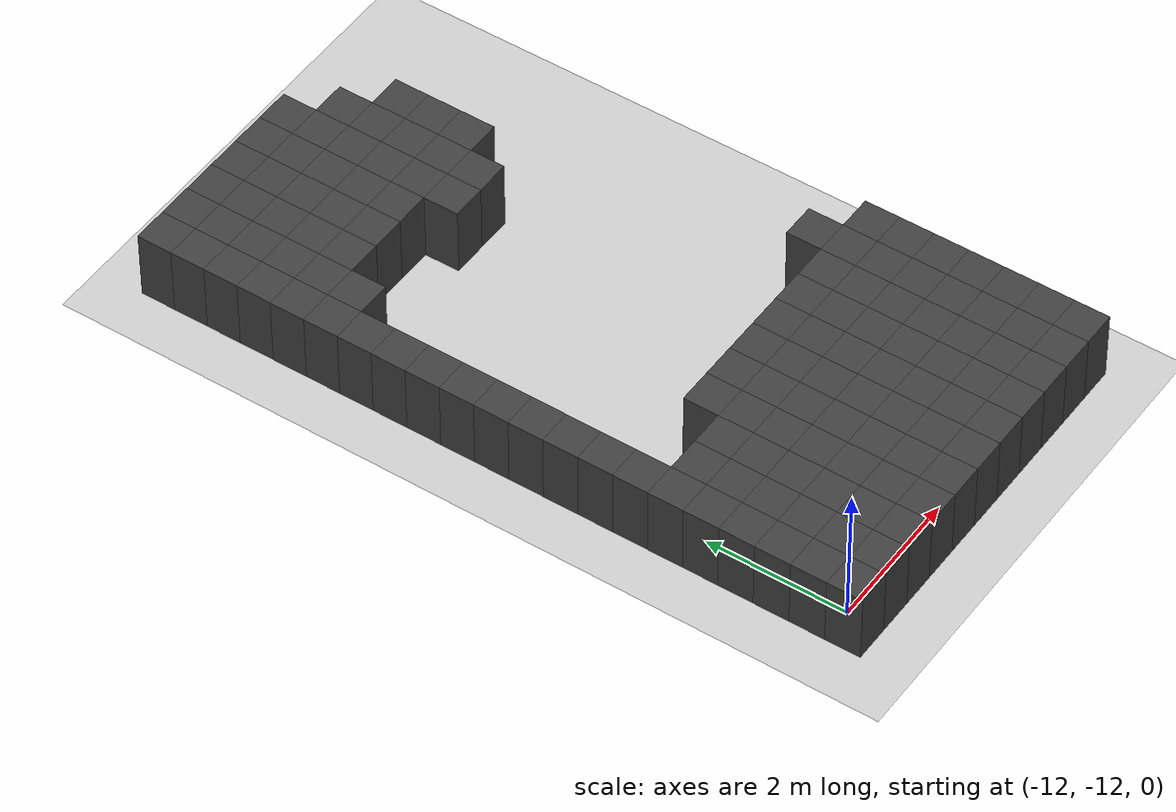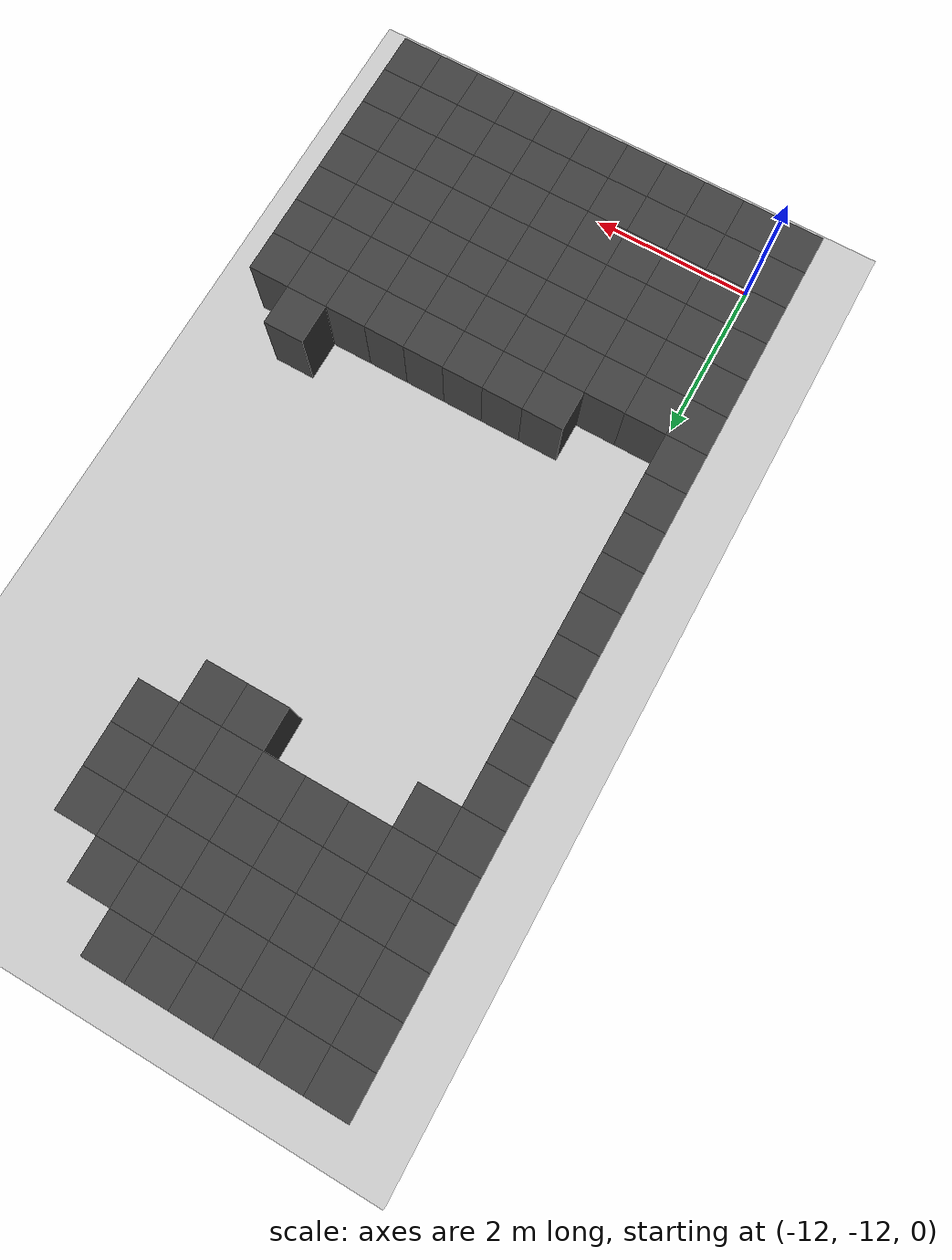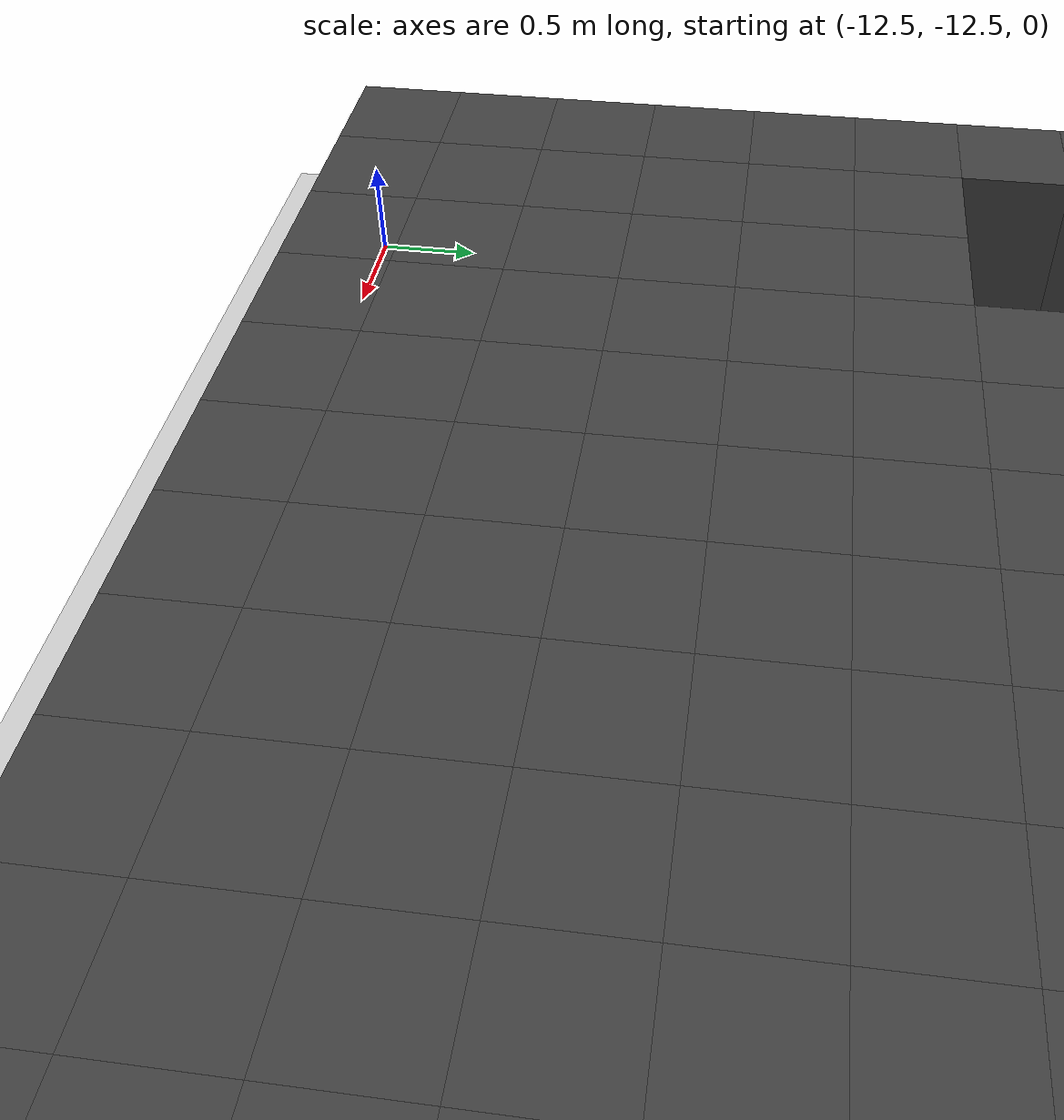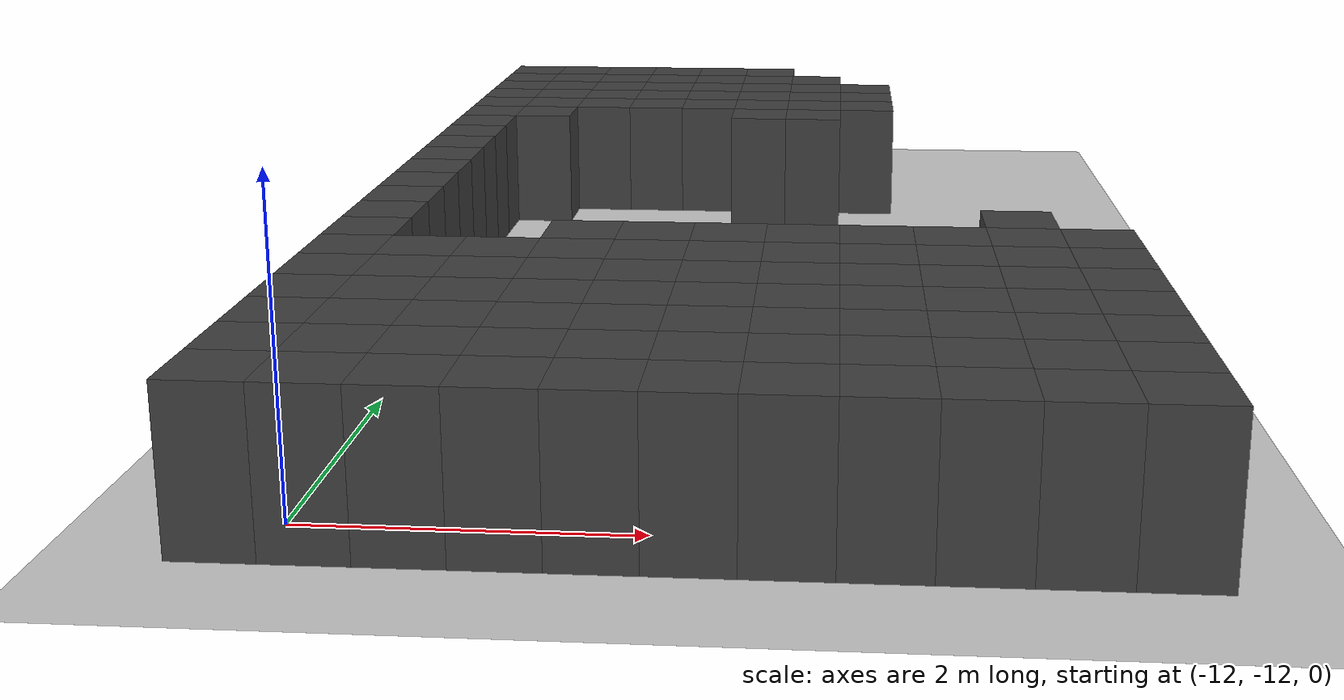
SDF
<sdf version="1.7">
 <world name="map_8658">
  <model name="ground_plane">
   <static>true</static>
   <link name="link">
    <collision name="collision">
     <geometry><plane><normal>0 0 1</normal><size>200 200</size></plane></geometry>
    </collision>
    <visual name="visual">
     <geometry><plane><normal>0 0 1</normal><size>200 200</size></plane></geometry>
     <material><ambient>0.8 0.8 0.8 1</ambient><diffuse>0.8 0.8 0.8 1</diffuse></material>
    </visual>
   </link>
  </model>
  <model name="maze_environment">
   <static>true</static>
   <link name="wall_573">
    <pose>-12.250 -2.250 0.500 0 0 0</pose>
    <collision name="col"><geometry><box><size>0.5 0.5 1.0</size></box></geometry></collision>
    <visual name="vis">
     <geometry><box><size>0.5 0.5 1.0</size></box></geometry>
     <material><ambient>0.15 0.15 0.15 1</ambient><diffuse>0.25 0.25 0.25 1</diffuse></material>
    </visual>
   </link>
   <link name="wall_574">
    <pose>-11.750 -2.250 0.500 0 0 0</pose>
    <collision name="col"><geometry><box><size>0.5 0.5 1.0</size></box></geometry></collision>
    <visual name="vis">
     <geometry><box><size>0.5 0.5 1.0</size></box></geometry>
     <material><ambient>0.15 0.15 0.15 1</ambient><diffuse>0.25 0.25 0.25 1</diffuse></material>
    </visual>
   </link>
   <link name="wall_575">
    <pose>-11.250 -2.250 0.500 0 0 0</pose>
    <collision name="col"><geometry><box><size>0.5 0.5 1.0</size></box></geometry></collision>
    <visual name="vis">
     <geometry><box><size>0.5 0.5 1.0</size></box></geometry>
     <material><ambient>0.15 0.15 0.15 1</ambient><diffuse>0.25 0.25 0.25 1</diffuse></material>
    </visual>
   </link>
   <link name="wall_576">
    <pose>-10.750 -2.250 0.500 0 0 0</pose>
    <collision name="col"><geometry><box><size>0.5 0.5 1.0</size></box></geometry></collision>
    <visual name="vis">
     <geometry><box><size>0.5 0.5 1.0</size></box></geometry>
     <material><ambient>0.15 0.15 0.15 1</ambient><diffuse>0.25 0.25 0.25 1</diffuse></material>
    </visual>
   </link>
   <link name="wall_577">
    <pose>-10.250 -2.250 0.500 0 0 0</pose>
    <collision name="col"><geometry><box><size>0.5 0.5 1.0</size></box></geometry></collision>
    <visual name="vis">
     <geometry><box><size>0.5 0.5 1.0</size></box></geometry>
     <material><ambient>0.15 0.15 0.15 1</ambient><diffuse>0.25 0.25 0.25 1</diffuse></material>
    </visual>
   </link>
   <link name="wall_578">
    <pose>-9.750 -2.250 0.500 0 0 0</pose>
    <collision name="col"><geometry><box><size>0.5 0.5 1.0</size></box></geometry></collision>
    <visual name="vis">
     <geometry><box><size>0.5 0.5 1.0</size></box></geometry>
     <material><ambient>0.15 0.15 0.15 1</ambient><diffuse>0.25 0.25 0.25 1</diffuse></material>
    </visual>
   </link>
   <link name="wall_594">
    <pose>-12.250 -2.750 0.500 0 0 0</pose>
    <collision name="col"><geometry><box><size>0.5 0.5 1.0</size></box></geometry></collision>
    <visual name="vis">
     <geometry><box><size>0.5 0.5 1.0</size></box></geometry>
     <material><ambient>0.15 0.15 0.15 1</ambient><diffuse>0.25 0.25 0.25 1</diffuse></material>
    </visual>
   </link>
   <link name="wall_595">
    <pose>-11.750 -2.750 0.500 0 0 0</pose>
    <collision name="col"><geometry><box><size>0.5 0.5 1.0</size></box></geometry></collision>
    <visual name="vis">
     <geometry><box><size>0.5 0.5 1.0</size></box></geometry>
     <material><ambient>0.15 0.15 0.15 1</ambient><diffuse>0.25 0.25 0.25 1</diffuse></material>
    </visual>
   </link>
   <link name="wall_596">
    <pose>-11.250 -2.750 0.500 0 0 0</pose>
    <collision name="col"><geometry><box><size>0.5 0.5 1.0</size></box></geometry></collision>
    <visual name="vis">
     <geometry><box><size>0.5 0.5 1.0</size></box></geometry>
     <material><ambient>0.15 0.15 0.15 1</ambient><diffuse>0.25 0.25 0.25 1</diffuse></material>
    </visual>
   </link>
   <link name="wall_597">
    <pose>-10.750 -2.750 0.500 0 0 0</pose>
    <collision name="col"><geometry><box><size>0.5 0.5 1.0</size></box></geometry></collision>
    <visual name="vis">
     <geometry><box><size>0.5 0.5 1.0</size></box></geometry>
     <material><ambient>0.15 0.15 0.15 1</ambient><diffuse>0.25 0.25 0.25 1</diffuse></material>
    </visual>
   </link>
   <link name="wall_598">
    <pose>-10.250 -2.750 0.500 0 0 0</pose>
    <collision name="col"><geometry><box><size>0.5 0.5 1.0</size></box></geometry></collision>
    <visual name="vis">
     <geometry><box><size>0.5 0.5 1.0</size></box></geometry>
     <material><ambient>0.15 0.15 0.15 1</ambient><diffuse>0.25 0.25 0.25 1</diffuse></material>
    </visual>
   </link>
   <link name="wall_599">
    <pose>-9.750 -2.750 0.500 0 0 0</pose>
    <collision name="col"><geometry><box><size>0.5 0.5 1.0</size></box></geometry></collision>
    <visual name="vis">
     <geometry><box><size>0.5 0.5 1.0</size></box></geometry>
     <material><ambient>0.15 0.15 0.15 1</ambient><diffuse>0.25 0.25 0.25 1</diffuse></material>
    </visual>
   </link>
   <link name="wall_600">
    <pose>-9.250 -2.750 0.500 0 0 0</pose>
    <collision name="col"><geometry><box><size>0.5 0.5 1.0</size></box></geometry></collision>
    <visual name="vis">
     <geometry><box><size>0.5 0.5 1.0</size></box></geometry>
     <material><ambient>0.15 0.15 0.15 1</ambient><diffuse>0.25 0.25 0.25 1</diffuse></material>
    </visual>
   </link>
   <link name="wall_613">
    <pose>-12.250 -3.250 0.500 0 0 0</pose>
    <collision name="col"><geometry><box><size>0.5 0.5 1.0</size></box></geometry></collision>
    <visual name="vis">
     <geometry><box><size>0.5 0.5 1.0</size></box></geometry>
     <material><ambient>0.15 0.15 0.15 1</ambient><diffuse>0.25 0.25 0.25 1</diffuse></material>
    </visual>
   </link>
   <link name="wall_614">
    <pose>-11.750 -3.250 0.500 0 0 0</pose>
    <collision name="col"><geometry><box><size>0.5 0.5 1.0</size></box></geometry></collision>
    <visual name="vis">
     <geometry><box><size>0.5 0.5 1.0</size></box></geometry>
     <material><ambient>0.15 0.15 0.15 1</ambient><diffuse>0.25 0.25 0.25 1</diffuse></material>
    </visual>
   </link>
   <link name="wall_615">
    <pose>-11.250 -3.250 0.500 0 0 0</pose>
    <collision name="col"><geometry><box><size>0.5 0.5 1.0</size></box></geometry></collision>
    <visual name="vis">
     <geometry><box><size>0.5 0.5 1.0</size></box></geometry>
     <material><ambient>0.15 0.15 0.15 1</ambient><diffuse>0.25 0.25 0.25 1</diffuse></material>
    </visual>
   </link>
   <link name="wall_616">
    <pose>-10.750 -3.250 0.500 0 0 0</pose>
    <collision name="col"><geometry><box><size>0.5 0.5 1.0</size></box></geometry></collision>
    <visual name="vis">
     <geometry><box><size>0.5 0.5 1.0</size></box></geometry>
     <material><ambient>0.15 0.15 0.15 1</ambient><diffuse>0.25 0.25 0.25 1</diffuse></material>
    </visual>
   </link>
   <link name="wall_617">
    <pose>-10.250 -3.250 0.500 0 0 0</pose>
    <collision name="col"><geometry><box><size>0.5 0.5 1.0</size></box></geometry></collision>
    <visual name="vis">
     <geometry><box><size>0.5 0.5 1.0</size></box></geometry>
     <material><ambient>0.15 0.15 0.15 1</ambient><diffuse>0.25 0.25 0.25 1</diffuse></material>
    </visual>
   </link>
   <link name="wall_618">
    <pose>-9.750 -3.250 0.500 0 0 0</pose>
    <collision name="col"><geometry><box><size>0.5 0.5 1.0</size></box></geometry></collision>
    <visual name="vis">
     <geometry><box><size>0.5 0.5 1.0</size></box></geometry>
     <material><ambient>0.15 0.15 0.15 1</ambient><diffuse>0.25 0.25 0.25 1</diffuse></material>
    </visual>
   </link>
   <link name="wall_619">
    <pose>-9.250 -3.250 0.500 0 0 0</pose>
    <collision name="col"><geometry><box><size>0.5 0.5 1.0</size></box></geometry></collision>
    <visual name="vis">
     <geometry><box><size>0.5 0.5 1.0</size></box></geometry>
     <material><ambient>0.15 0.15 0.15 1</ambient><diffuse>0.25 0.25 0.25 1</diffuse></material>
    </visual>
   </link>
   <link name="wall_620">
    <pose>-8.750 -3.250 0.500 0 0 0</pose>
    <collision name="col"><geometry><box><size>0.5 0.5 1.0</size></box></geometry></collision>
    <visual name="vis">
     <geometry><box><size>0.5 0.5 1.0</size></box></geometry>
     <material><ambient>0.15 0.15 0.15 1</ambient><diffuse>0.25 0.25 0.25 1</diffuse></material>
    </visual>
   </link>
   <link name="wall_631">
    <pose>-12.250 -3.750 0.500 0 0 0</pose>
    <collision name="col"><geometry><box><size>0.5 0.5 1.0</size></box></geometry></collision>
    <visual name="vis">
     <geometry><box><size>0.5 0.5 1.0</size></box></geometry>
     <material><ambient>0.15 0.15 0.15 1</ambient><diffuse>0.25 0.25 0.25 1</diffuse></material>
    </visual>
   </link>
   <link name="wall_632">
    <pose>-11.750 -3.750 0.500 0 0 0</pose>
    <collision name="col"><geometry><box><size>0.5 0.5 1.0</size></box></geometry></collision>
    <visual name="vis">
     <geometry><box><size>0.5 0.5 1.0</size></box></geometry>
     <material><ambient>0.15 0.15 0.15 1</ambient><diffuse>0.25 0.25 0.25 1</diffuse></material>
    </visual>
   </link>
   <link name="wall_633">
    <pose>-11.250 -3.750 0.500 0 0 0</pose>
    <collision name="col"><geometry><box><size>0.5 0.5 1.0</size></box></geometry></collision>
    <visual name="vis">
     <geometry><box><size>0.5 0.5 1.0</size></box></geometry>
     <material><ambient>0.15 0.15 0.15 1</ambient><diffuse>0.25 0.25 0.25 1</diffuse></material>
    </visual>
   </link>
   <link name="wall_634">
    <pose>-10.750 -3.750 0.500 0 0 0</pose>
    <collision name="col"><geometry><box><size>0.5 0.5 1.0</size></box></geometry></collision>
    <visual name="vis">
     <geometry><box><size>0.5 0.5 1.0</size></box></geometry>
     <material><ambient>0.15 0.15 0.15 1</ambient><diffuse>0.25 0.25 0.25 1</diffuse></material>
    </visual>
   </link>
   <link name="wall_635">
    <pose>-10.250 -3.750 0.500 0 0 0</pose>
    <collision name="col"><geometry><box><size>0.5 0.5 1.0</size></box></geometry></collision>
    <visual name="vis">
     <geometry><box><size>0.5 0.5 1.0</size></box></geometry>
     <material><ambient>0.15 0.15 0.15 1</ambient><diffuse>0.25 0.25 0.25 1</diffuse></material>
    </visual>
   </link>
   <link name="wall_636">
    <pose>-9.750 -3.750 0.500 0 0 0</pose>
    <collision name="col"><geometry><box><size>0.5 0.5 1.0</size></box></geometry></collision>
    <visual name="vis">
     <geometry><box><size>0.5 0.5 1.0</size></box></geometry>
     <material><ambient>0.15 0.15 0.15 1</ambient><diffuse>0.25 0.25 0.25 1</diffuse></material>
    </visual>
   </link>
   <link name="wall_637">
    <pose>-9.250 -3.750 0.500 0 0 0</pose>
    <collision name="col"><geometry><box><size>0.5 0.5 1.0</size></box></geometry></collision>
    <visual name="vis">
     <geometry><box><size>0.5 0.5 1.0</size></box></geometry>
     <material><ambient>0.15 0.15 0.15 1</ambient><diffuse>0.25 0.25 0.25 1</diffuse></material>
    </visual>
   </link>
   <link name="wall_638">
    <pose>-8.750 -3.750 0.500 0 0 0</pose>
    <collision name="col"><geometry><box><size>0.5 0.5 1.0</size></box></geometry></collision>
    <visual name="vis">
     <geometry><box><size>0.5 0.5 1.0</size></box></geometry>
     <material><ambient>0.15 0.15 0.15 1</ambient><diffuse>0.25 0.25 0.25 1</diffuse></material>
    </visual>
   </link>
   <link name="wall_649">
    <pose>-12.250 -4.250 0.500 0 0 0</pose>
    <collision name="col"><geometry><box><size>0.5 0.5 1.0</size></box></geometry></collision>
    <visual name="vis">
     <geometry><box><size>0.5 0.5 1.0</size></box></geometry>
     <material><ambient>0.15 0.15 0.15 1</ambient><diffuse>0.25 0.25 0.25 1</diffuse></material>
    </visual>
   </link>
   <link name="wall_650">
    <pose>-11.750 -4.250 0.500 0 0 0</pose>
    <collision name="col"><geometry><box><size>0.5 0.5 1.0</size></box></geometry></collision>
    <visual name="vis">
     <geometry><box><size>0.5 0.5 1.0</size></box></geometry>
     <material><ambient>0.15 0.15 0.15 1</ambient><diffuse>0.25 0.25 0.25 1</diffuse></material>
    </visual>
   </link>
   <link name="wall_651">
    <pose>-11.250 -4.250 0.500 0 0 0</pose>
    <collision name="col"><geometry><box><size>0.5 0.5 1.0</size></box></geometry></collision>
    <visual name="vis">
     <geometry><box><size>0.5 0.5 1.0</size></box></geometry>
     <material><ambient>0.15 0.15 0.15 1</ambient><diffuse>0.25 0.25 0.25 1</diffuse></material>
    </visual>
   </link>
   <link name="wall_652">
    <pose>-10.750 -4.250 0.500 0 0 0</pose>
    <collision name="col"><geometry><box><size>0.5 0.5 1.0</size></box></geometry></collision>
    <visual name="vis">
     <geometry><box><size>0.5 0.5 1.0</size></box></geometry>
     <material><ambient>0.15 0.15 0.15 1</ambient><diffuse>0.25 0.25 0.25 1</diffuse></material>
    </visual>
   </link>
   <link name="wall_653">
    <pose>-10.250 -4.250 0.500 0 0 0</pose>
    <collision name="col"><geometry><box><size>0.5 0.5 1.0</size></box></geometry></collision>
    <visual name="vis">
     <geometry><box><size>0.5 0.5 1.0</size></box></geometry>
     <material><ambient>0.15 0.15 0.15 1</ambient><diffuse>0.25 0.25 0.25 1</diffuse></material>
    </visual>
   </link>
   <link name="wall_654">
    <pose>-9.750 -4.250 0.500 0 0 0</pose>
    <collision name="col"><geometry><box><size>0.5 0.5 1.0</size></box></geometry></collision>
    <visual name="vis">
     <geometry><box><size>0.5 0.5 1.0</size></box></geometry>
     <material><ambient>0.15 0.15 0.15 1</ambient><diffuse>0.25 0.25 0.25 1</diffuse></material>
    </visual>
   </link>
   <link name="wall_655">
    <pose>-9.250 -4.250 0.500 0 0 0</pose>
    <collision name="col"><geometry><box><size>0.5 0.5 1.0</size></box></geometry></collision>
    <visual name="vis">
     <geometry><box><size>0.5 0.5 1.0</size></box></geometry>
     <material><ambient>0.15 0.15 0.15 1</ambient><diffuse>0.25 0.25 0.25 1</diffuse></material>
    </visual>
   </link>
   <link name="wall_656">
    <pose>-8.750 -4.250 0.500 0 0 0</pose>
    <collision name="col"><geometry><box><size>0.5 0.5 1.0</size></box></geometry></collision>
    <visual name="vis">
     <geometry><box><size>0.5 0.5 1.0</size></box></geometry>
     <material><ambient>0.15 0.15 0.15 1</ambient><diffuse>0.25 0.25 0.25 1</diffuse></material>
    </visual>
   </link>
   <link name="wall_666">
    <pose>-12.250 -4.750 0.500 0 0 0</pose>
    <collision name="col"><geometry><box><size>0.5 0.5 1.0</size></box></geometry></collision>
    <visual name="vis">
     <geometry><box><size>0.5 0.5 1.0</size></box></geometry>
     <material><ambient>0.15 0.15 0.15 1</ambient><diffuse>0.25 0.25 0.25 1</diffuse></material>
    </visual>
   </link>
   <link name="wall_667">
    <pose>-11.750 -4.750 0.500 0 0 0</pose>
    <collision name="col"><geometry><box><size>0.5 0.5 1.0</size></box></geometry></collision>
    <visual name="vis">
     <geometry><box><size>0.5 0.5 1.0</size></box></geometry>
     <material><ambient>0.15 0.15 0.15 1</ambient><diffuse>0.25 0.25 0.25 1</diffuse></material>
    </visual>
   </link>
   <link name="wall_668">
    <pose>-9.750 -4.750 0.500 0 0 0</pose>
    <collision name="col"><geometry><box><size>0.5 0.5 1.0</size></box></geometry></collision>
    <visual name="vis">
     <geometry><box><size>0.5 0.5 1.0</size></box></geometry>
     <material><ambient>0.15 0.15 0.15 1</ambient><diffuse>0.25 0.25 0.25 1</diffuse></material>
    </visual>
   </link>
   <link name="wall_669">
    <pose>-9.250 -4.750 0.500 0 0 0</pose>
    <collision name="col"><geometry><box><size>0.5 0.5 1.0</size></box></geometry></collision>
    <visual name="vis">
     <geometry><box><size>0.5 0.5 1.0</size></box></geometry>
     <material><ambient>0.15 0.15 0.15 1</ambient><diffuse>0.25 0.25 0.25 1</diffuse></material>
    </visual>
   </link>
   <link name="wall_676">
    <pose>-12.250 -5.250 0.500 0 0 0</pose>
    <collision name="col"><geometry><box><size>0.5 0.5 1.0</size></box></geometry></collision>
    <visual name="vis">
     <geometry><box><size>0.5 0.5 1.0</size></box></geometry>
     <material><ambient>0.15 0.15 0.15 1</ambient><diffuse>0.25 0.25 0.25 1</diffuse></material>
    </visual>
   </link>
   <link name="wall_683">
    <pose>-12.250 -5.750 0.500 0 0 0</pose>
    <collision name="col"><geometry><box><size>0.5 0.5 1.0</size></box></geometry></collision>
    <visual name="vis">
     <geometry><box><size>0.5 0.5 1.0</size></box></geometry>
     <material><ambient>0.15 0.15 0.15 1</ambient><diffuse>0.25 0.25 0.25 1</diffuse></material>
    </visual>
   </link>
   <link name="wall_689">
    <pose>-12.250 -6.250 0.500 0 0 0</pose>
    <collision name="col"><geometry><box><size>0.5 0.5 1.0</size></box></geometry></collision>
    <visual name="vis">
     <geometry><box><size>0.5 0.5 1.0</size></box></geometry>
     <material><ambient>0.15 0.15 0.15 1</ambient><diffuse>0.25 0.25 0.25 1</diffuse></material>
    </visual>
   </link>
   <link name="wall_694">
    <pose>-12.250 -6.750 0.500 0 0 0</pose>
    <collision name="col"><geometry><box><size>0.5 0.5 1.0</size></box></geometry></collision>
    <visual name="vis">
     <geometry><box><size>0.5 0.5 1.0</size></box></geometry>
     <material><ambient>0.15 0.15 0.15 1</ambient><diffuse>0.25 0.25 0.25 1</diffuse></material>
    </visual>
   </link>
   <link name="wall_699">
    <pose>-12.250 -7.250 0.500 0 0 0</pose>
    <collision name="col"><geometry><box><size>0.5 0.5 1.0</size></box></geometry></collision>
    <visual name="vis">
     <geometry><box><size>0.5 0.5 1.0</size></box></geometry>
     <material><ambient>0.15 0.15 0.15 1</ambient><diffuse>0.25 0.25 0.25 1</diffuse></material>
    </visual>
   </link>
   <link name="wall_709">
    <pose>-12.250 -7.750 0.500 0 0 0</pose>
    <collision name="col"><geometry><box><size>0.5 0.5 1.0</size></box></geometry></collision>
    <visual name="vis">
     <geometry><box><size>0.5 0.5 1.0</size></box></geometry>
     <material><ambient>0.15 0.15 0.15 1</ambient><diffuse>0.25 0.25 0.25 1</diffuse></material>
    </visual>
   </link>
   <link name="wall_723">
    <pose>-12.250 -8.250 0.500 0 0 0</pose>
    <collision name="col"><geometry><box><size>0.5 0.5 1.0</size></box></geometry></collision>
    <visual name="vis">
     <geometry><box><size>0.5 0.5 1.0</size></box></geometry>
     <material><ambient>0.15 0.15 0.15 1</ambient><diffuse>0.25 0.25 0.25 1</diffuse></material>
    </visual>
   </link>
   <link name="wall_741">
    <pose>-12.250 -8.750 0.500 0 0 0</pose>
    <collision name="col"><geometry><box><size>0.5 0.5 1.0</size></box></geometry></collision>
    <visual name="vis">
     <geometry><box><size>0.5 0.5 1.0</size></box></geometry>
     <material><ambient>0.15 0.15 0.15 1</ambient><diffuse>0.25 0.25 0.25 1</diffuse></material>
    </visual>
   </link>
   <link name="wall_742">
    <pose>-7.750 -8.750 0.500 0 0 0</pose>
    <collision name="col"><geometry><box><size>0.5 0.5 1.0</size></box></geometry></collision>
    <visual name="vis">
     <geometry><box><size>0.5 0.5 1.0</size></box></geometry>
     <material><ambient>0.15 0.15 0.15 1</ambient><diffuse>0.25 0.25 0.25 1</diffuse></material>
    </visual>
   </link>
   <link name="wall_761">
    <pose>-12.250 -9.250 0.500 0 0 0</pose>
    <collision name="col"><geometry><box><size>0.5 0.5 1.0</size></box></geometry></collision>
    <visual name="vis">
     <geometry><box><size>0.5 0.5 1.0</size></box></geometry>
     <material><ambient>0.15 0.15 0.15 1</ambient><diffuse>0.25 0.25 0.25 1</diffuse></material>
    </visual>
   </link>
   <link name="wall_762">
    <pose>-10.750 -9.250 0.500 0 0 0</pose>
    <collision name="col"><geometry><box><size>0.5 0.5 1.0</size></box></geometry></collision>
    <visual name="vis">
     <geometry><box><size>0.5 0.5 1.0</size></box></geometry>
     <material><ambient>0.15 0.15 0.15 1</ambient><diffuse>0.25 0.25 0.25 1</diffuse></material>
    </visual>
   </link>
   <link name="wall_763">
    <pose>-10.250 -9.250 0.500 0 0 0</pose>
    <collision name="col"><geometry><box><size>0.5 0.5 1.0</size></box></geometry></collision>
    <visual name="vis">
     <geometry><box><size>0.5 0.5 1.0</size></box></geometry>
     <material><ambient>0.15 0.15 0.15 1</ambient><diffuse>0.25 0.25 0.25 1</diffuse></material>
    </visual>
   </link>
   <link name="wall_764">
    <pose>-9.750 -9.250 0.500 0 0 0</pose>
    <collision name="col"><geometry><box><size>0.5 0.5 1.0</size></box></geometry></collision>
    <visual name="vis">
     <geometry><box><size>0.5 0.5 1.0</size></box></geometry>
     <material><ambient>0.15 0.15 0.15 1</ambient><diffuse>0.25 0.25 0.25 1</diffuse></material>
    </visual>
   </link>
   <link name="wall_765">
    <pose>-9.250 -9.250 0.500 0 0 0</pose>
    <collision name="col"><geometry><box><size>0.5 0.5 1.0</size></box></geometry></collision>
    <visual name="vis">
     <geometry><box><size>0.5 0.5 1.0</size></box></geometry>
     <material><ambient>0.15 0.15 0.15 1</ambient><diffuse>0.25 0.25 0.25 1</diffuse></material>
    </visual>
   </link>
   <link name="wall_766">
    <pose>-8.750 -9.250 0.500 0 0 0</pose>
    <collision name="col"><geometry><box><size>0.5 0.5 1.0</size></box></geometry></collision>
    <visual name="vis">
     <geometry><box><size>0.5 0.5 1.0</size></box></geometry>
     <material><ambient>0.15 0.15 0.15 1</ambient><diffuse>0.25 0.25 0.25 1</diffuse></material>
    </visual>
   </link>
   <link name="wall_767">
    <pose>-8.250 -9.250 0.500 0 0 0</pose>
    <collision name="col"><geometry><box><size>0.5 0.5 1.0</size></box></geometry></collision>
    <visual name="vis">
     <geometry><box><size>0.5 0.5 1.0</size></box></geometry>
     <material><ambient>0.15 0.15 0.15 1</ambient><diffuse>0.25 0.25 0.25 1</diffuse></material>
    </visual>
   </link>
   <link name="wall_768">
    <pose>-7.750 -9.250 0.500 0 0 0</pose>
    <collision name="col"><geometry><box><size>0.5 0.5 1.0</size></box></geometry></collision>
    <visual name="vis">
     <geometry><box><size>0.5 0.5 1.0</size></box></geometry>
     <material><ambient>0.15 0.15 0.15 1</ambient><diffuse>0.25 0.25 0.25 1</diffuse></material>
    </visual>
   </link>
   <link name="wall_769">
    <pose>-7.250 -9.250 0.500 0 0 0</pose>
    <collision name="col"><geometry><box><size>0.5 0.5 1.0</size></box></geometry></collision>
    <visual name="vis">
     <geometry><box><size>0.5 0.5 1.0</size></box></geometry>
     <material><ambient>0.15 0.15 0.15 1</ambient><diffuse>0.25 0.25 0.25 1</diffuse></material>
    </visual>
   </link>
   <link name="wall_785">
    <pose>-12.250 -9.750 0.500 0 0 0</pose>
    <collision name="col"><geometry><box><size>0.5 0.5 1.0</size></box></geometry></collision>
    <visual name="vis">
     <geometry><box><size>0.5 0.5 1.0</size></box></geometry>
     <material><ambient>0.15 0.15 0.15 1</ambient><diffuse>0.25 0.25 0.25 1</diffuse></material>
    </visual>
   </link>
   <link name="wall_786">
    <pose>-11.750 -9.750 0.500 0 0 0</pose>
    <collision name="col"><geometry><box><size>0.5 0.5 1.0</size></box></geometry></collision>
    <visual name="vis">
     <geometry><box><size>0.5 0.5 1.0</size></box></geometry>
     <material><ambient>0.15 0.15 0.15 1</ambient><diffuse>0.25 0.25 0.25 1</diffuse></material>
    </visual>
   </link>
   <link name="wall_787">
    <pose>-11.250 -9.750 0.500 0 0 0</pose>
    <collision name="col"><geometry><box><size>0.5 0.5 1.0</size></box></geometry></collision>
    <visual name="vis">
     <geometry><box><size>0.5 0.5 1.0</size></box></geometry>
     <material><ambient>0.15 0.15 0.15 1</ambient><diffuse>0.25 0.25 0.25 1</diffuse></material>
    </visual>
   </link>
   <link name="wall_788">
    <pose>-10.750 -9.750 0.500 0 0 0</pose>
    <collision name="col"><geometry><box><size>0.5 0.5 1.0</size></box></geometry></collision>
    <visual name="vis">
     <geometry><box><size>0.5 0.5 1.0</size></box></geometry>
     <material><ambient>0.15 0.15 0.15 1</ambient><diffuse>0.25 0.25 0.25 1</diffuse></material>
    </visual>
   </link>
   <link name="wall_789">
    <pose>-10.250 -9.750 0.500 0 0 0</pose>
    <collision name="col"><geometry><box><size>0.5 0.5 1.0</size></box></geometry></collision>
    <visual name="vis">
     <geometry><box><size>0.5 0.5 1.0</size></box></geometry>
     <material><ambient>0.15 0.15 0.15 1</ambient><diffuse>0.25 0.25 0.25 1</diffuse></material>
    </visual>
   </link>
   <link name="wall_790">
    <pose>-9.750 -9.750 0.500 0 0 0</pose>
    <collision name="col"><geometry><box><size>0.5 0.5 1.0</size></box></geometry></collision>
    <visual name="vis">
     <geometry><box><size>0.5 0.5 1.0</size></box></geometry>
     <material><ambient>0.15 0.15 0.15 1</ambient><diffuse>0.25 0.25 0.25 1</diffuse></material>
    </visual>
   </link>
   <link name="wall_791">
    <pose>-9.250 -9.750 0.500 0 0 0</pose>
    <collision name="col"><geometry><box><size>0.5 0.5 1.0</size></box></geometry></collision>
    <visual name="vis">
     <geometry><box><size>0.5 0.5 1.0</size></box></geometry>
     <material><ambient>0.15 0.15 0.15 1</ambient><diffuse>0.25 0.25 0.25 1</diffuse></material>
    </visual>
   </link>
   <link name="wall_792">
    <pose>-8.750 -9.750 0.500 0 0 0</pose>
    <collision name="col"><geometry><box><size>0.5 0.5 1.0</size></box></geometry></collision>
    <visual name="vis">
     <geometry><box><size>0.5 0.5 1.0</size></box></geometry>
     <material><ambient>0.15 0.15 0.15 1</ambient><diffuse>0.25 0.25 0.25 1</diffuse></material>
    </visual>
   </link>
   <link name="wall_793">
    <pose>-8.250 -9.750 0.500 0 0 0</pose>
    <collision name="col"><geometry><box><size>0.5 0.5 1.0</size></box></geometry></collision>
    <visual name="vis">
     <geometry><box><size>0.5 0.5 1.0</size></box></geometry>
     <material><ambient>0.15 0.15 0.15 1</ambient><diffuse>0.25 0.25 0.25 1</diffuse></material>
    </visual>
   </link>
   <link name="wall_794">
    <pose>-7.750 -9.750 0.500 0 0 0</pose>
    <collision name="col"><geometry><box><size>0.5 0.5 1.0</size></box></geometry></collision>
    <visual name="vis">
     <geometry><box><size>0.5 0.5 1.0</size></box></geometry>
     <material><ambient>0.15 0.15 0.15 1</ambient><diffuse>0.25 0.25 0.25 1</diffuse></material>
    </visual>
   </link>
   <link name="wall_795">
    <pose>-7.250 -9.750 0.500 0 0 0</pose>
    <collision name="col"><geometry><box><size>0.5 0.5 1.0</size></box></geometry></collision>
    <visual name="vis">
     <geometry><box><size>0.5 0.5 1.0</size></box></geometry>
     <material><ambient>0.15 0.15 0.15 1</ambient><diffuse>0.25 0.25 0.25 1</diffuse></material>
    </visual>
   </link>
   <link name="wall_813">
    <pose>-12.250 -10.250 0.500 0 0 0</pose>
    <collision name="col"><geometry><box><size>0.5 0.5 1.0</size></box></geometry></collision>
    <visual name="vis">
     <geometry><box><size>0.5 0.5 1.0</size></box></geometry>
     <material><ambient>0.15 0.15 0.15 1</ambient><diffuse>0.25 0.25 0.25 1</diffuse></material>
    </visual>
   </link>
   <link name="wall_814">
    <pose>-11.750 -10.250 0.500 0 0 0</pose>
    <collision name="col"><geometry><box><size>0.5 0.5 1.0</size></box></geometry></collision>
    <visual name="vis">
     <geometry><box><size>0.5 0.5 1.0</size></box></geometry>
     <material><ambient>0.15 0.15 0.15 1</ambient><diffuse>0.25 0.25 0.25 1</diffuse></material>
    </visual>
   </link>
   <link name="wall_815">
    <pose>-11.250 -10.250 0.500 0 0 0</pose>
    <collision name="col"><geometry><box><size>0.5 0.5 1.0</size></box></geometry></collision>
    <visual name="vis">
     <geometry><box><size>0.5 0.5 1.0</size></box></geometry>
     <material><ambient>0.15 0.15 0.15 1</ambient><diffuse>0.25 0.25 0.25 1</diffuse></material>
    </visual>
   </link>
   <link name="wall_816">
    <pose>-10.750 -10.250 0.500 0 0 0</pose>
    <collision name="col"><geometry><box><size>0.5 0.5 1.0</size></box></geometry></collision>
    <visual name="vis">
     <geometry><box><size>0.5 0.5 1.0</size></box></geometry>
     <material><ambient>0.15 0.15 0.15 1</ambient><diffuse>0.25 0.25 0.25 1</diffuse></material>
    </visual>
   </link>
   <link name="wall_817">
    <pose>-10.250 -10.250 0.500 0 0 0</pose>
    <collision name="col"><geometry><box><size>0.5 0.5 1.0</size></box></geometry></collision>
    <visual name="vis">
     <geometry><box><size>0.5 0.5 1.0</size></box></geometry>
     <material><ambient>0.15 0.15 0.15 1</ambient><diffuse>0.25 0.25 0.25 1</diffuse></material>
    </visual>
   </link>
   <link name="wall_818">
    <pose>-9.750 -10.250 0.500 0 0 0</pose>
    <collision name="col"><geometry><box><size>0.5 0.5 1.0</size></box></geometry></collision>
    <visual name="vis">
     <geometry><box><size>0.5 0.5 1.0</size></box></geometry>
     <material><ambient>0.15 0.15 0.15 1</ambient><diffuse>0.25 0.25 0.25 1</diffuse></material>
    </visual>
   </link>
   <link name="wall_819">
    <pose>-9.250 -10.250 0.500 0 0 0</pose>
    <collision name="col"><geometry><box><size>0.5 0.5 1.0</size></box></geometry></collision>
    <visual name="vis">
     <geometry><box><size>0.5 0.5 1.0</size></box></geometry>
     <material><ambient>0.15 0.15 0.15 1</ambient><diffuse>0.25 0.25 0.25 1</diffuse></material>
    </visual>
   </link>
   <link name="wall_820">
    <pose>-8.750 -10.250 0.500 0 0 0</pose>
    <collision name="col"><geometry><box><size>0.5 0.5 1.0</size></box></geometry></collision>
    <visual name="vis">
     <geometry><box><size>0.5 0.5 1.0</size></box></geometry>
     <material><ambient>0.15 0.15 0.15 1</ambient><diffuse>0.25 0.25 0.25 1</diffuse></material>
    </visual>
   </link>
   <link name="wall_821">
    <pose>-8.250 -10.250 0.500 0 0 0</pose>
    <collision name="col"><geometry><box><size>0.5 0.5 1.0</size></box></geometry></collision>
    <visual name="vis">
     <geometry><box><size>0.5 0.5 1.0</size></box></geometry>
     <material><ambient>0.15 0.15 0.15 1</ambient><diffuse>0.25 0.25 0.25 1</diffuse></material>
    </visual>
   </link>
   <link name="wall_822">
    <pose>-7.750 -10.250 0.500 0 0 0</pose>
    <collision name="col"><geometry><box><size>0.5 0.5 1.0</size></box></geometry></collision>
    <visual name="vis">
     <geometry><box><size>0.5 0.5 1.0</size></box></geometry>
     <material><ambient>0.15 0.15 0.15 1</ambient><diffuse>0.25 0.25 0.25 1</diffuse></material>
    </visual>
   </link>
   <link name="wall_823">
    <pose>-7.250 -10.250 0.500 0 0 0</pose>
    <collision name="col"><geometry><box><size>0.5 0.5 1.0</size></box></geometry></collision>
    <visual name="vis">
     <geometry><box><size>0.5 0.5 1.0</size></box></geometry>
     <material><ambient>0.15 0.15 0.15 1</ambient><diffuse>0.25 0.25 0.25 1</diffuse></material>
    </visual>
   </link>
   <link name="wall_842">
    <pose>-12.250 -10.750 0.500 0 0 0</pose>
    <collision name="col"><geometry><box><size>0.5 0.5 1.0</size></box></geometry></collision>
    <visual name="vis">
     <geometry><box><size>0.5 0.5 1.0</size></box></geometry>
     <material><ambient>0.15 0.15 0.15 1</ambient><diffuse>0.25 0.25 0.25 1</diffuse></material>
    </visual>
   </link>
   <link name="wall_843">
    <pose>-11.750 -10.750 0.500 0 0 0</pose>
    <collision name="col"><geometry><box><size>0.5 0.5 1.0</size></box></geometry></collision>
    <visual name="vis">
     <geometry><box><size>0.5 0.5 1.0</size></box></geometry>
     <material><ambient>0.15 0.15 0.15 1</ambient><diffuse>0.25 0.25 0.25 1</diffuse></material>
    </visual>
   </link>
   <link name="wall_844">
    <pose>-11.250 -10.750 0.500 0 0 0</pose>
    <collision name="col"><geometry><box><size>0.5 0.5 1.0</size></box></geometry></collision>
    <visual name="vis">
     <geometry><box><size>0.5 0.5 1.0</size></box></geometry>
     <material><ambient>0.15 0.15 0.15 1</ambient><diffuse>0.25 0.25 0.25 1</diffuse></material>
    </visual>
   </link>
   <link name="wall_845">
    <pose>-10.750 -10.750 0.500 0 0 0</pose>
    <collision name="col"><geometry><box><size>0.5 0.5 1.0</size></box></geometry></collision>
    <visual name="vis">
     <geometry><box><size>0.5 0.5 1.0</size></box></geometry>
     <material><ambient>0.15 0.15 0.15 1</ambient><diffuse>0.25 0.25 0.25 1</diffuse></material>
    </visual>
   </link>
   <link name="wall_846">
    <pose>-10.250 -10.750 0.500 0 0 0</pose>
    <collision name="col"><geometry><box><size>0.5 0.5 1.0</size></box></geometry></collision>
    <visual name="vis">
     <geometry><box><size>0.5 0.5 1.0</size></box></geometry>
     <material><ambient>0.15 0.15 0.15 1</ambient><diffuse>0.25 0.25 0.25 1</diffuse></material>
    </visual>
   </link>
   <link name="wall_847">
    <pose>-9.750 -10.750 0.500 0 0 0</pose>
    <collision name="col"><geometry><box><size>0.5 0.5 1.0</size></box></geometry></collision>
    <visual name="vis">
     <geometry><box><size>0.5 0.5 1.0</size></box></geometry>
     <material><ambient>0.15 0.15 0.15 1</ambient><diffuse>0.25 0.25 0.25 1</diffuse></material>
    </visual>
   </link>
   <link name="wall_848">
    <pose>-9.250 -10.750 0.500 0 0 0</pose>
    <collision name="col"><geometry><box><size>0.5 0.5 1.0</size></box></geometry></collision>
    <visual name="vis">
     <geometry><box><size>0.5 0.5 1.0</size></box></geometry>
     <material><ambient>0.15 0.15 0.15 1</ambient><diffuse>0.25 0.25 0.25 1</diffuse></material>
    </visual>
   </link>
   <link name="wall_849">
    <pose>-8.750 -10.750 0.500 0 0 0</pose>
    <collision name="col"><geometry><box><size>0.5 0.5 1.0</size></box></geometry></collision>
    <visual name="vis">
     <geometry><box><size>0.5 0.5 1.0</size></box></geometry>
     <material><ambient>0.15 0.15 0.15 1</ambient><diffuse>0.25 0.25 0.25 1</diffuse></material>
    </visual>
   </link>
   <link name="wall_850">
    <pose>-8.250 -10.750 0.500 0 0 0</pose>
    <collision name="col"><geometry><box><size>0.5 0.5 1.0</size></box></geometry></collision>
    <visual name="vis">
     <geometry><box><size>0.5 0.5 1.0</size></box></geometry>
     <material><ambient>0.15 0.15 0.15 1</ambient><diffuse>0.25 0.25 0.25 1</diffuse></material>
    </visual>
   </link>
   <link name="wall_851">
    <pose>-7.750 -10.750 0.500 0 0 0</pose>
    <collision name="col"><geometry><box><size>0.5 0.5 1.0</size></box></geometry></collision>
    <visual name="vis">
     <geometry><box><size>0.5 0.5 1.0</size></box></geometry>
     <material><ambient>0.15 0.15 0.15 1</ambient><diffuse>0.25 0.25 0.25 1</diffuse></material>
    </visual>
   </link>
   <link name="wall_852">
    <pose>-7.250 -10.750 0.500 0 0 0</pose>
    <collision name="col"><geometry><box><size>0.5 0.5 1.0</size></box></geometry></collision>
    <visual name="vis">
     <geometry><box><size>0.5 0.5 1.0</size></box></geometry>
     <material><ambient>0.15 0.15 0.15 1</ambient><diffuse>0.25 0.25 0.25 1</diffuse></material>
    </visual>
   </link>
   <link name="wall_873">
    <pose>-12.250 -11.250 0.500 0 0 0</pose>
    <collision name="col"><geometry><box><size>0.5 0.5 1.0</size></box></geometry></collision>
    <visual name="vis">
     <geometry><box><size>0.5 0.5 1.0</size></box></geometry>
     <material><ambient>0.15 0.15 0.15 1</ambient><diffuse>0.25 0.25 0.25 1</diffuse></material>
    </visual>
   </link>
   <link name="wall_874">
    <pose>-11.750 -11.250 0.500 0 0 0</pose>
    <collision name="col"><geometry><box><size>0.5 0.5 1.0</size></box></geometry></collision>
    <visual name="vis">
     <geometry><box><size>0.5 0.5 1.0</size></box></geometry>
     <material><ambient>0.15 0.15 0.15 1</ambient><diffuse>0.25 0.25 0.25 1</diffuse></material>
    </visual>
   </link>
   <link name="wall_875">
    <pose>-11.250 -11.250 0.500 0 0 0</pose>
    <collision name="col"><geometry><box><size>0.5 0.5 1.0</size></box></geometry></collision>
    <visual name="vis">
     <geometry><box><size>0.5 0.5 1.0</size></box></geometry>
     <material><ambient>0.15 0.15 0.15 1</ambient><diffuse>0.25 0.25 0.25 1</diffuse></material>
    </visual>
   </link>
   <link name="wall_876">
    <pose>-10.750 -11.250 0.500 0 0 0</pose>
    <collision name="col"><geometry><box><size>0.5 0.5 1.0</size></box></geometry></collision>
    <visual name="vis">
     <geometry><box><size>0.5 0.5 1.0</size></box></geometry>
     <material><ambient>0.15 0.15 0.15 1</ambient><diffuse>0.25 0.25 0.25 1</diffuse></material>
    </visual>
   </link>
   <link name="wall_877">
    <pose>-10.250 -11.250 0.500 0 0 0</pose>
    <collision name="col"><geometry><box><size>0.5 0.5 1.0</size></box></geometry></collision>
    <visual name="vis">
     <geometry><box><size>0.5 0.5 1.0</size></box></geometry>
     <material><ambient>0.15 0.15 0.15 1</ambient><diffuse>0.25 0.25 0.25 1</diffuse></material>
    </visual>
   </link>
   <link name="wall_878">
    <pose>-9.750 -11.250 0.500 0 0 0</pose>
    <collision name="col"><geometry><box><size>0.5 0.5 1.0</size></box></geometry></collision>
    <visual name="vis">
     <geometry><box><size>0.5 0.5 1.0</size></box></geometry>
     <material><ambient>0.15 0.15 0.15 1</ambient><diffuse>0.25 0.25 0.25 1</diffuse></material>
    </visual>
   </link>
   <link name="wall_879">
    <pose>-9.250 -11.250 0.500 0 0 0</pose>
    <collision name="col"><geometry><box><size>0.5 0.5 1.0</size></box></geometry></collision>
    <visual name="vis">
     <geometry><box><size>0.5 0.5 1.0</size></box></geometry>
     <material><ambient>0.15 0.15 0.15 1</ambient><diffuse>0.25 0.25 0.25 1</diffuse></material>
    </visual>
   </link>
   <link name="wall_880">
    <pose>-8.750 -11.250 0.500 0 0 0</pose>
    <collision name="col"><geometry><box><size>0.5 0.5 1.0</size></box></geometry></collision>
    <visual name="vis">
     <geometry><box><size>0.5 0.5 1.0</size></box></geometry>
     <material><ambient>0.15 0.15 0.15 1</ambient><diffuse>0.25 0.25 0.25 1</diffuse></material>
    </visual>
   </link>
   <link name="wall_881">
    <pose>-8.250 -11.250 0.500 0 0 0</pose>
    <collision name="col"><geometry><box><size>0.5 0.5 1.0</size></box></geometry></collision>
    <visual name="vis">
     <geometry><box><size>0.5 0.5 1.0</size></box></geometry>
     <material><ambient>0.15 0.15 0.15 1</ambient><diffuse>0.25 0.25 0.25 1</diffuse></material>
    </visual>
   </link>
   <link name="wall_882">
    <pose>-7.750 -11.250 0.500 0 0 0</pose>
    <collision name="col"><geometry><box><size>0.5 0.5 1.0</size></box></geometry></collision>
    <visual name="vis">
     <geometry><box><size>0.5 0.5 1.0</size></box></geometry>
     <material><ambient>0.15 0.15 0.15 1</ambient><diffuse>0.25 0.25 0.25 1</diffuse></material>
    </visual>
   </link>
   <link name="wall_883">
    <pose>-7.250 -11.250 0.500 0 0 0</pose>
    <collision name="col"><geometry><box><size>0.5 0.5 1.0</size></box></geometry></collision>
    <visual name="vis">
     <geometry><box><size>0.5 0.5 1.0</size></box></geometry>
     <material><ambient>0.15 0.15 0.15 1</ambient><diffuse>0.25 0.25 0.25 1</diffuse></material>
    </visual>
   </link>
   <link name="wall_911">
    <pose>-12.250 -11.750 0.500 0 0 0</pose>
    <collision name="col"><geometry><box><size>0.5 0.5 1.0</size></box></geometry></collision>
    <visual name="vis">
     <geometry><box><size>0.5 0.5 1.0</size></box></geometry>
     <material><ambient>0.15 0.15 0.15 1</ambient><diffuse>0.25 0.25 0.25 1</diffuse></material>
    </visual>
   </link>
   <link name="wall_912">
    <pose>-11.750 -11.750 0.500 0 0 0</pose>
    <collision name="col"><geometry><box><size>0.5 0.5 1.0</size></box></geometry></collision>
    <visual name="vis">
     <geometry><box><size>0.5 0.5 1.0</size></box></geometry>
     <material><ambient>0.15 0.15 0.15 1</ambient><diffuse>0.25 0.25 0.25 1</diffuse></material>
    </visual>
   </link>
   <link name="wall_913">
    <pose>-11.250 -11.750 0.500 0 0 0</pose>
    <collision name="col"><geometry><box><size>0.5 0.5 1.0</size></box></geometry></collision>
    <visual name="vis">
     <geometry><box><size>0.5 0.5 1.0</size></box></geometry>
     <material><ambient>0.15 0.15 0.15 1</ambient><diffuse>0.25 0.25 0.25 1</diffuse></material>
    </visual>
   </link>
   <link name="wall_914">
    <pose>-10.750 -11.750 0.500 0 0 0</pose>
    <collision name="col"><geometry><box><size>0.5 0.5 1.0</size></box></geometry></collision>
    <visual name="vis">
     <geometry><box><size>0.5 0.5 1.0</size></box></geometry>
     <material><ambient>0.15 0.15 0.15 1</ambient><diffuse>0.25 0.25 0.25 1</diffuse></material>
    </visual>
   </link>
   <link name="wall_915">
    <pose>-10.250 -11.750 0.500 0 0 0</pose>
    <collision name="col"><geometry><box><size>0.5 0.5 1.0</size></box></geometry></collision>
    <visual name="vis">
     <geometry><box><size>0.5 0.5 1.0</size></box></geometry>
     <material><ambient>0.15 0.15 0.15 1</ambient><diffuse>0.25 0.25 0.25 1</diffuse></material>
    </visual>
   </link>
   <link name="wall_916">
    <pose>-9.750 -11.750 0.500 0 0 0</pose>
    <collision name="col"><geometry><box><size>0.5 0.5 1.0</size></box></geometry></collision>
    <visual name="vis">
     <geometry><box><size>0.5 0.5 1.0</size></box></geometry>
     <material><ambient>0.15 0.15 0.15 1</ambient><diffuse>0.25 0.25 0.25 1</diffuse></material>
    </visual>
   </link>
   <link name="wall_917">
    <pose>-9.250 -11.750 0.500 0 0 0</pose>
    <collision name="col"><geometry><box><size>0.5 0.5 1.0</size></box></geometry></collision>
    <visual name="vis">
     <geometry><box><size>0.5 0.5 1.0</size></box></geometry>
     <material><ambient>0.15 0.15 0.15 1</ambient><diffuse>0.25 0.25 0.25 1</diffuse></material>
    </visual>
   </link>
   <link name="wall_918">
    <pose>-8.750 -11.750 0.500 0 0 0</pose>
    <collision name="col"><geometry><box><size>0.5 0.5 1.0</size></box></geometry></collision>
    <visual name="vis">
     <geometry><box><size>0.5 0.5 1.0</size></box></geometry>
     <material><ambient>0.15 0.15 0.15 1</ambient><diffuse>0.25 0.25 0.25 1</diffuse></material>
    </visual>
   </link>
   <link name="wall_919">
    <pose>-8.250 -11.750 0.500 0 0 0</pose>
    <collision name="col"><geometry><box><size>0.5 0.5 1.0</size></box></geometry></collision>
    <visual name="vis">
     <geometry><box><size>0.5 0.5 1.0</size></box></geometry>
     <material><ambient>0.15 0.15 0.15 1</ambient><diffuse>0.25 0.25 0.25 1</diffuse></material>
    </visual>
   </link>
   <link name="wall_920">
    <pose>-7.750 -11.750 0.500 0 0 0</pose>
    <collision name="col"><geometry><box><size>0.5 0.5 1.0</size></box></geometry></collision>
    <visual name="vis">
     <geometry><box><size>0.5 0.5 1.0</size></box></geometry>
     <material><ambient>0.15 0.15 0.15 1</ambient><diffuse>0.25 0.25 0.25 1</diffuse></material>
    </visual>
   </link>
   <link name="wall_921">
    <pose>-7.250 -11.750 0.500 0 0 0</pose>
    <collision name="col"><geometry><box><size>0.5 0.5 1.0</size></box></geometry></collision>
    <visual name="vis">
     <geometry><box><size>0.5 0.5 1.0</size></box></geometry>
     <material><ambient>0.15 0.15 0.15 1</ambient><diffuse>0.25 0.25 0.25 1</diffuse></material>
    </visual>
   </link>
   <link name="wall_954">
    <pose>-12.250 -12.250 0.500 0 0 0</pose>
    <collision name="col"><geometry><box><size>0.5 0.5 1.0</size></box></geometry></collision>
    <visual name="vis">
     <geometry><box><size>0.5 0.5 1.0</size></box></geometry>
     <material><ambient>0.15 0.15 0.15 1</ambient><diffuse>0.25 0.25 0.25 1</diffuse></material>
    </visual>
   </link>
   <link name="wall_955">
    <pose>-11.750 -12.250 0.500 0 0 0</pose>
    <collision name="col"><geometry><box><size>0.5 0.5 1.0</size></box></geometry></collision>
    <visual name="vis">
     <geometry><box><size>0.5 0.5 1.0</size></box></geometry>
     <material><ambient>0.15 0.15 0.15 1</ambient><diffuse>0.25 0.25 0.25 1</diffuse></material>
    </visual>
   </link>
   <link name="wall_956">
    <pose>-11.250 -12.250 0.500 0 0 0</pose>
    <collision name="col"><geometry><box><size>0.5 0.5 1.0</size></box></geometry></collision>
    <visual name="vis">
     <geometry><box><size>0.5 0.5 1.0</size></box></geometry>
     <material><ambient>0.15 0.15 0.15 1</ambient><diffuse>0.25 0.25 0.25 1</diffuse></material>
    </visual>
   </link>
   <link name="wall_957">
    <pose>-10.750 -12.250 0.500 0 0 0</pose>
    <collision name="col"><geometry><box><size>0.5 0.5 1.0</size></box></geometry></collision>
    <visual name="vis">
     <geometry><box><size>0.5 0.5 1.0</size></box></geometry>
     <material><ambient>0.15 0.15 0.15 1</ambient><diffuse>0.25 0.25 0.25 1</diffuse></material>
    </visual>
   </link>
   <link name="wall_958">
    <pose>-10.250 -12.250 0.500 0 0 0</pose>
    <collision name="col"><geometry><box><size>0.5 0.5 1.0</size></box></geometry></collision>
    <visual name="vis">
     <geometry><box><size>0.5 0.5 1.0</size></box></geometry>
     <material><ambient>0.15 0.15 0.15 1</ambient><diffuse>0.25 0.25 0.25 1</diffuse></material>
    </visual>
   </link>
   <link name="wall_959">
    <pose>-9.750 -12.250 0.500 0 0 0</pose>
    <collision name="col"><geometry><box><size>0.5 0.5 1.0</size></box></geometry></collision>
    <visual name="vis">
     <geometry><box><size>0.5 0.5 1.0</size></box></geometry>
     <material><ambient>0.15 0.15 0.15 1</ambient><diffuse>0.25 0.25 0.25 1</diffuse></material>
    </visual>
   </link>
   <link name="wall_960">
    <pose>-9.250 -12.250 0.500 0 0 0</pose>
    <collision name="col"><geometry><box><size>0.5 0.5 1.0</size></box></geometry></collision>
    <visual name="vis">
     <geometry><box><size>0.5 0.5 1.0</size></box></geometry>
     <material><ambient>0.15 0.15 0.15 1</ambient><diffuse>0.25 0.25 0.25 1</diffuse></material>
    </visual>
   </link>
   <link name="wall_961">
    <pose>-8.750 -12.250 0.500 0 0 0</pose>
    <collision name="col"><geometry><box><size>0.5 0.5 1.0</size></box></geometry></collision>
    <visual name="vis">
     <geometry><box><size>0.5 0.5 1.0</size></box></geometry>
     <material><ambient>0.15 0.15 0.15 1</ambient><diffuse>0.25 0.25 0.25 1</diffuse></material>
    </visual>
   </link>
   <link name="wall_962">
    <pose>-8.250 -12.250 0.500 0 0 0</pose>
    <collision name="col"><geometry><box><size>0.5 0.5 1.0</size></box></geometry></collision>
    <visual name="vis">
     <geometry><box><size>0.5 0.5 1.0</size></box></geometry>
     <material><ambient>0.15 0.15 0.15 1</ambient><diffuse>0.25 0.25 0.25 1</diffuse></material>
    </visual>
   </link>
   <link name="wall_963">
    <pose>-7.750 -12.250 0.500 0 0 0</pose>
    <collision name="col"><geometry><box><size>0.5 0.5 1.0</size></box></geometry></collision>
    <visual name="vis">
     <geometry><box><size>0.5 0.5 1.0</size></box></geometry>
     <material><ambient>0.15 0.15 0.15 1</ambient><diffuse>0.25 0.25 0.25 1</diffuse></material>
    </visual>
   </link>
   <link name="wall_964">
    <pose>-7.250 -12.250 0.500 0 0 0</pose>
    <collision name="col"><geometry><box><size>0.5 0.5 1.0</size></box></geometry></collision>
    <visual name="vis">
     <geometry><box><size>0.5 0.5 1.0</size></box></geometry>
     <material><ambient>0.15 0.15 0.15 1</ambient><diffuse>0.25 0.25 0.25 1</diffuse></material>
    </visual>
   </link>
  </model>
 </world>
</sdf>
